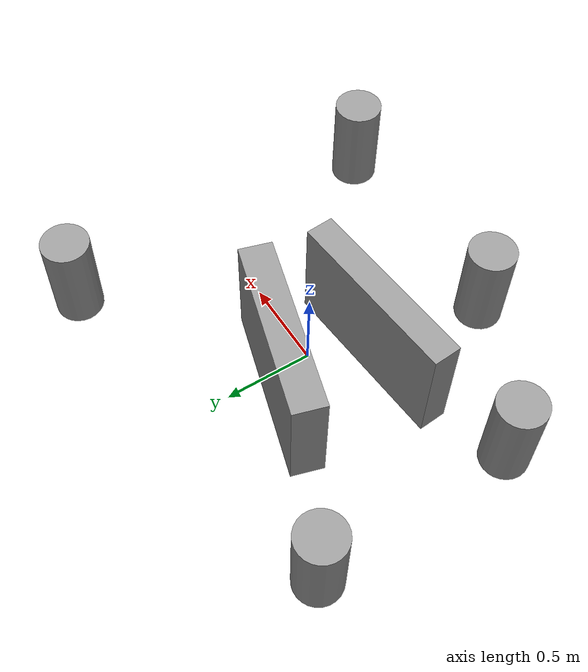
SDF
<sdf version="1.7">
 <world name="default">
  <physics name="default_physics" default="0" type="ode">
   <max_step_size>0.001</max_step_size>
   <real_time_factor>1</real_time_factor>
   <real_time_update_rate>1000</real_time_update_rate>
  </physics>
  <scene><ambient>0.4 0.4 0.4 1</ambient><background>0.7 0.7 0.7 1</background><shadows>0</shadows></scene>
  <light name="sun" type="directional">
   <pose>0 0 10 0 -0 0</pose>
   <diffuse>0.8 0.8 0.8 1</diffuse>
   <specular>0.1 0.1 0.1 1</specular>
   <attenuation>
    <range>1000</range>
    <constant>0.9</constant>
    <linear>0.01</linear>
    <quadratic>0.001</quadratic>
   </attenuation>
   <direction>-0.5 0.5 -1</direction>
   <spot><inner_angle>0</inner_angle><outer_angle>0</outer_angle><falloff>0</falloff></spot>
  </light>
  <gravity>0 0 -9.8</gravity>
  <magnetic_field>6e-06 2.3e-05 -4.2e-05</magnetic_field>
  <atmosphere type="adiabatic"/>
  <spherical_coordinates>
   <surface_model>EARTH_WGS84</surface_model>
   <latitude_deg>0</latitude_deg>
   <longitude_deg>0</longitude_deg>
   <elevation>0</elevation>
   <heading_deg>0</heading_deg>
  </spherical_coordinates>
  <model name="unit_cylinder_clone">
   <pose>-1.04459 -0.515627 0.268434 -9e-06 2.7e-05 0.000427</pose>
   <link name="link">
    <inertial>
     <mass>1</mass>
     <inertia><ixx>0.145833</ixx><ixy>0</ixy><ixz>0</ixz><iyy>0.145833</iyy><iyz>0</iyz><izz>0.125</izz></inertia>
    </inertial>
    <collision name="collision">
     <geometry><cylinder><radius>0.132351</radius><length>0.526879</length></cylinder></geometry>
    </collision>
    <visual name="visual">
     <geometry><cylinder><radius>0.132351</radius><length>0.526879</length></cylinder></geometry>
     <material>
      <script><name>Gazebo/Grey</name><uri>file://media/materials/scripts/gazebo.material</uri></script>
     </material>
    </visual>
   </link>
  </model>
  <model name="unit_cylinder_clone_0_clone">
   <pose>-0.250212 -0.976009 0.26844 -5e-06 4e-06 0.032926</pose>
   <link name="link">
    <inertial>
     <mass>1</mass>
     <inertia><ixx>0.145833</ixx><ixy>0</ixy><ixz>0</ixz><iyy>0.145833</iyy><iyz>0</iyz><izz>0.125</izz></inertia>
    </inertial>
    <collision name="collision">
     <geometry><cylinder><radius>0.132351</radius><length>0.526879</length></cylinder></geometry>
    </collision>
    <visual name="visual">
     <geometry><cylinder><radius>0.132351</radius><length>0.526879</length></cylinder></geometry>
     <material>
      <script><name>Gazebo/Grey</name><uri>file://media/materials/scripts/gazebo.material</uri></script>
     </material>
    </visual>
   </link>
  </model>
  <model name="unit_cylinder_clone_0_clone_0">
   <pose>1.01239 -0.995304 0.26843 -2e-06 3e-06 -0.059994</pose>
   <link name="link">
    <inertial>
     <mass>1</mass>
     <inertia><ixx>0.145833</ixx><ixy>0</ixy><ixz>0</ixz><iyy>0.145833</iyy><iyz>0</iyz><izz>0.125</izz></inertia>
    </inertial>
    <collision name="collision">
     <geometry><cylinder><radius>0.132351</radius><length>0.526879</length></cylinder></geometry>
    </collision>
    <visual name="visual">
     <geometry><cylinder><radius>0.132351</radius><length>0.526879</length></cylinder></geometry>
     <material>
      <script><name>Gazebo/Grey</name><uri>file://media/materials/scripts/gazebo.material</uri></script>
     </material>
    </visual>
   </link>
  </model>
  <model name="unit_cylinder_clone_0_clone_1">
   <pose>0.981059 0.892569 0.268433 2.1e-05 9e-06 0.000522</pose>
   <link name="link">
    <inertial>
     <mass>1</mass>
     <inertia><ixx>0.145833</ixx><ixy>0</ixy><ixz>0</ixz><iyy>0.145833</iyy><iyz>0</iyz><izz>0.125</izz></inertia>
    </inertial>
    <collision name="collision">
     <geometry><cylinder><radius>0.132351</radius><length>0.526879</length></cylinder></geometry>
    </collision>
    <visual name="visual">
     <geometry><cylinder><radius>0.132351</radius><length>0.526879</length></cylinder></geometry>
     <material>
      <script><name>Gazebo/Grey</name><uri>file://media/materials/scripts/gazebo.material</uri></script>
     </material>
    </visual>
   </link>
  </model>
  <model name="unit_cylinder_clone_0_clone_1_clone">
   <pose>-1.09097 0.644248 0.268436 -4.9e-05 -3e-06 0.121152</pose>
   <link name="link">
    <inertial>
     <mass>1</mass>
     <inertia><ixx>0.145833</ixx><ixy>0</ixy><ixz>0</ixz><iyy>0.145833</iyy><iyz>0</iyz><izz>0.125</izz></inertia>
    </inertial>
    <collision name="collision">
     <geometry><cylinder><radius>0.132351</radius><length>0.526879</length></cylinder></geometry>
    </collision>
    <visual name="visual">
     <geometry><cylinder><radius>0.132351</radius><length>0.526879</length></cylinder></geometry>
     <material>
      <script><name>Gazebo/Grey</name><uri>file://media/materials/scripts/gazebo.material</uri></script>
     </material>
    </visual>
   </link>
  </model>
  <model name="unit_box_clone">
   <pose>-0.190406 -0.293681 0.317961 2e-06 -9e-06 0.074911</pose>
   <link name="link">
    <inertial>
     <mass>1</mass>
     <inertia>
      <ixx>0.166667</ixx>
      <ixy>0</ixy>
      <ixz>0</ixz>
      <iyy>0.166667</iyy>
      <iyz>0</iyz>
      <izz>0.166667</izz>
     </inertia>
    </inertial>
    <collision name="collision"><geometry><box><size>1 0.156652 0.625932</size></box></geometry></collision>
    <visual name="visual">
     <geometry><box><size>1 0.156652 0.625932</size></box></geometry>
     <material>
      <script><name>Gazebo/Grey</name><uri>file://media/materials/scripts/gazebo.material</uri></script>
     </material>
    </visual>
   </link>
  </model>
  <model name="unit_box_clone_0">
   <pose>-0.111963 0.238134 0.317966 0 0 -0.28821</pose>
   <link name="link">
    <inertial>
     <mass>1</mass>
     <inertia>
      <ixx>0.166667</ixx>
      <ixy>0</ixy>
      <ixz>0</ixz>
      <iyy>0.166667</iyy>
      <iyz>0</iyz>
      <izz>0.166667</izz>
     </inertia>
    </inertial>
    <collision name="collision"><geometry><box><size>1 0.182741 0.625932</size></box></geometry></collision>
    <visual name="visual">
     <geometry><box><size>1 0.182741 0.625932</size></box></geometry>
     <material>
      <script><name>Gazebo/Grey</name><uri>file://media/materials/scripts/gazebo.material</uri></script>
     </material>
    </visual>
   </link>
  </model>
 </world>
</sdf>
